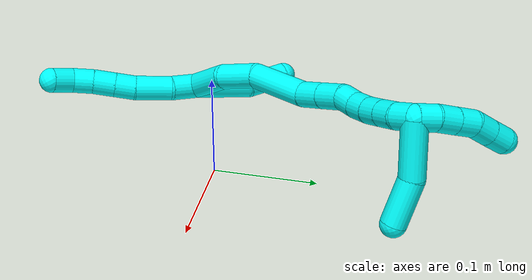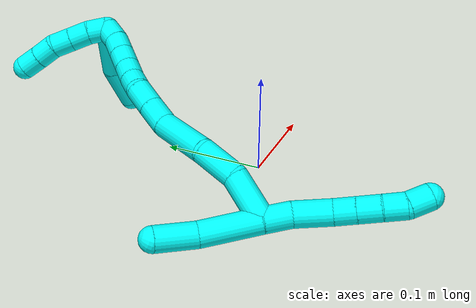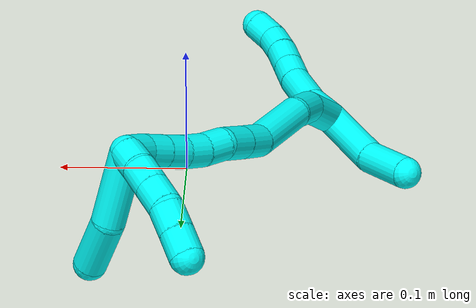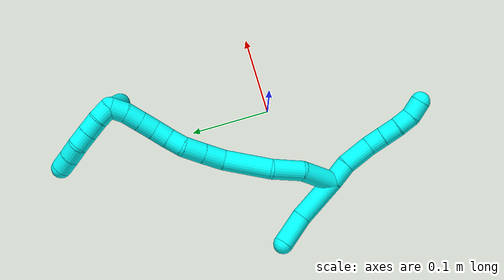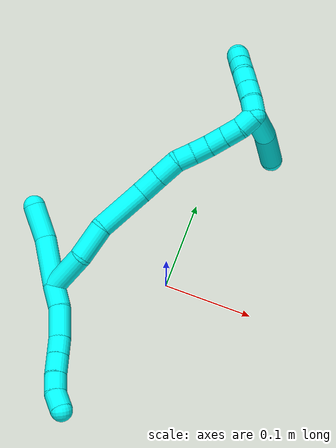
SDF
<sdf version="1.7">
 <world name="default">
  <model name="3">
   <static>0</static>
   <link name="3">
    <collision name="collision-cylinder-e_1_2_8">
     <pose>0.006473 -0.001153 -0.011763 3.04388 0.501022 2.76398</pose>
     <geometry><cylinder><radius>0.0125</radius><length>0.026952</length></cylinder></geometry>
     <surface>
      <friction><ode><mu>1.16</mu><mu2>1.16</mu2><slip1>0</slip1><slip2>0</slip2></ode></friction>
      <contact><ode><kp>1e+06</kp><kd>1</kd><max_vel>0</max_vel><min_depth>0.001</min_depth></ode></contact>
     </surface>
    </collision>
    <visual name="visual-cylinder-e_1_2_8">
     <pose>0.006473 -0.001153 -0.011763 3.04388 0.501022 2.76398</pose>
     <geometry><cylinder><radius>0.0125</radius><length>0.026952</length></cylinder></geometry>
     <material><ambient>0.003922 1 0.996078 1</ambient></material>
    </visual>
    <collision name="collision-cylinder-e_2_8_9">
     <pose>0.019931 -0.007713 -0.039763 2.82013 0.387541 1.76055</pose>
     <geometry><cylinder><radius>0.0125</radius><length>0.036967</length></cylinder></geometry>
     <surface>
      <friction><ode><mu>1.16</mu><mu2>1.16</mu2><slip1>0</slip1><slip2>0</slip2></ode></friction>
      <contact><ode><kp>1e+06</kp><kd>1</kd><max_vel>0</max_vel><min_depth>0.001</min_depth></ode></contact>
     </surface>
    </collision>
    <visual name="visual-cylinder-e_2_8_9">
     <pose>0.019931 -0.007713 -0.039763 2.82013 0.387541 1.76055</pose>
     <geometry><cylinder><radius>0.0125</radius><length>0.036967</length></cylinder></geometry>
     <material><ambient>0.003922 1 0.996078 1</ambient></material>
    </visual>
    <collision name="collision-cylinder-e_3_9_10">
     <pose>0.031296 -0.017449 -0.064448 2.66813 0.432295 1.47679</pose>
     <geometry><cylinder><radius>0.0125</radius><length>0.02091</length></cylinder></geometry>
     <surface>
      <friction><ode><mu>1.16</mu><mu2>1.16</mu2><slip1>0</slip1><slip2>0</slip2></ode></friction>
      <contact><ode><kp>1e+06</kp><kd>1</kd><max_vel>0</max_vel><min_depth>0.001</min_depth></ode></contact>
     </surface>
    </collision>
    <visual name="visual-cylinder-e_3_9_10">
     <pose>0.031296 -0.017449 -0.064448 2.66813 0.432295 1.47679</pose>
     <geometry><cylinder><radius>0.0125</radius><length>0.02091</length></cylinder></geometry>
     <material><ambient>0.003922 1 0.996078 1</ambient></material>
    </visual>
    <collision name="collision-cylinder-e_4_10_11">
     <pose>0.040334 -0.026396 -0.081903 2.66773 0.431305 1.47357</pose>
     <geometry><cylinder><radius>0.0125</radius><length>0.022285</length></cylinder></geometry>
     <surface>
      <friction><ode><mu>1.16</mu><mu2>1.16</mu2><slip1>0</slip1><slip2>0</slip2></ode></friction>
      <contact><ode><kp>1e+06</kp><kd>1</kd><max_vel>0</max_vel><min_depth>0.001</min_depth></ode></contact>
     </surface>
    </collision>
    <visual name="visual-cylinder-e_4_10_11">
     <pose>0.040334 -0.026396 -0.081903 2.66773 0.431305 1.47357</pose>
     <geometry><cylinder><radius>0.0125</radius><length>0.022285</length></cylinder></geometry>
     <material><ambient>0.003922 1 0.996078 1</ambient></material>
    </visual>
    <collision name="collision-cylinder-e_5_11_12">
     <pose>0.049369 -0.034397 -0.099923 2.78258 0.42668 1.74707</pose>
     <geometry><cylinder><radius>0.0125</radius><length>0.02115</length></cylinder></geometry>
     <surface>
      <friction><ode><mu>1.16</mu><mu2>1.16</mu2><slip1>0</slip1><slip2>0</slip2></ode></friction>
      <contact><ode><kp>1e+06</kp><kd>1</kd><max_vel>0</max_vel><min_depth>0.001</min_depth></ode></contact>
     </surface>
    </collision>
    <visual name="visual-cylinder-e_5_11_12">
     <pose>0.049369 -0.034397 -0.099923 2.78258 0.42668 1.74707</pose>
     <geometry><cylinder><radius>0.0125</radius><length>0.02115</length></cylinder></geometry>
     <material><ambient>0.003922 1 0.996078 1</ambient></material>
    </visual>
    <collision name="collision-cylinder-e_6_12_6">
     <pose>0.060519 -0.038406 -0.117412 3.06784 0.672915 2.93141</pose>
     <geometry><cylinder><radius>0.0125</radius><length>0.021737</length></cylinder></geometry>
     <surface>
      <friction><ode><mu>1.16</mu><mu2>1.16</mu2><slip1>0</slip1><slip2>0</slip2></ode></friction>
      <contact><ode><kp>1e+06</kp><kd>1</kd><max_vel>0</max_vel><min_depth>0.001</min_depth></ode></contact>
     </surface>
    </collision>
    <visual name="visual-cylinder-e_6_12_6">
     <pose>0.060519 -0.038406 -0.117412 3.06784 0.672915 2.93141</pose>
     <geometry><cylinder><radius>0.0125</radius><length>0.021737</length></cylinder></geometry>
     <material><ambient>0.003922 1 0.996078 1</ambient></material>
    </visual>
    <collision name="collision-cylinder-e_1_2_13">
     <pose>-0.014965 0.004861 0.024768 -0.193796 -0.535159 0.053284</pose>
     <geometry><cylinder><radius>0.0125</radius><length>0.058687</length></cylinder></geometry>
     <surface>
      <friction><ode><mu>1.16</mu><mu2>1.16</mu2><slip1>0</slip1><slip2>0</slip2></ode></friction>
      <contact><ode><kp>1e+06</kp><kd>1</kd><max_vel>0</max_vel><min_depth>0.001</min_depth></ode></contact>
     </surface>
    </collision>
    <visual name="visual-cylinder-e_1_2_13">
     <pose>-0.014965 0.004861 0.024768 -0.193796 -0.535159 0.053284</pose>
     <geometry><cylinder><radius>0.0125</radius><length>0.058687</length></cylinder></geometry>
     <material><ambient>0.003922 1 0.996078 1</ambient></material>
    </visual>
    <collision name="collision-cylinder-e_2_13_5">
     <pose>-0.037411 0.008683 0.068763 0.05402 -0.370638 -0.010129</pose>
     <geometry><cylinder><radius>0.0125</radius><length>0.041313</length></cylinder></geometry>
     <surface>
      <friction><ode><mu>1.16</mu><mu2>1.16</mu2><slip1>0</slip1><slip2>0</slip2></ode></friction>
      <contact><ode><kp>1e+06</kp><kd>1</kd><max_vel>0</max_vel><min_depth>0.001</min_depth></ode></contact>
     </surface>
    </collision>
    <visual name="visual-cylinder-e_2_13_5">
     <pose>-0.037411 0.008683 0.068763 0.05402 -0.370638 -0.010129</pose>
     <geometry><cylinder><radius>0.0125</radius><length>0.041313</length></cylinder></geometry>
     <material><ambient>0.003922 1 0.996078 1</ambient></material>
    </visual>
    <collision name="collision-cylinder-e_1_2_14">
     <pose>0.014034 0.012109 0.014949 -0.68084 0.630251 -0.229918</pose>
     <geometry><cylinder><radius>0.0125</radius><length>0.047625</length></cylinder></geometry>
     <surface>
      <friction><ode><mu>1.16</mu><mu2>1.16</mu2><slip1>0</slip1><slip2>0</slip2></ode></friction>
      <contact><ode><kp>1e+06</kp><kd>1</kd><max_vel>0</max_vel><min_depth>0.001</min_depth></ode></contact>
     </surface>
    </collision>
    <visual name="visual-cylinder-e_1_2_14">
     <pose>0.014034 0.012109 0.014949 -0.68084 0.630251 -0.229918</pose>
     <geometry><cylinder><radius>0.0125</radius><length>0.047625</length></cylinder></geometry>
     <material><ambient>0.003922 1 0.996078 1</ambient></material>
    </visual>
    <collision name="collision-cylinder-e_2_14_15">
     <pose>0.033803 0.036406 0.044565 -0.693321 0.292141 -0.106192</pose>
     <geometry><cylinder><radius>0.0125</radius><length>0.03983</length></cylinder></geometry>
     <surface>
      <friction><ode><mu>1.16</mu><mu2>1.16</mu2><slip1>0</slip1><slip2>0</slip2></ode></friction>
      <contact><ode><kp>1e+06</kp><kd>1</kd><max_vel>0</max_vel><min_depth>0.001</min_depth></ode></contact>
     </surface>
    </collision>
    <visual name="visual-cylinder-e_2_14_15">
     <pose>0.033803 0.036406 0.044565 -0.693321 0.292141 -0.106192</pose>
     <geometry><cylinder><radius>0.0125</radius><length>0.03983</length></cylinder></geometry>
     <material><ambient>0.003922 1 0.996078 1</ambient></material>
    </visual>
    <collision name="collision-cylinder-e_3_15_16">
     <pose>0.044174 0.073234 0.074975 -1.00228 0.157215 -0.086244</pose>
     <geometry><cylinder><radius>0.0125</radius><length>0.059207</length></cylinder></geometry>
     <surface>
      <friction><ode><mu>1.16</mu><mu2>1.16</mu2><slip1>0</slip1><slip2>0</slip2></ode></friction>
      <contact><ode><kp>1e+06</kp><kd>1</kd><max_vel>0</max_vel><min_depth>0.001</min_depth></ode></contact>
     </surface>
    </collision>
    <visual name="visual-cylinder-e_3_15_16">
     <pose>0.044174 0.073234 0.074975 -1.00228 0.157215 -0.086244</pose>
     <geometry><cylinder><radius>0.0125</radius><length>0.059207</length></cylinder></geometry>
     <material><ambient>0.003922 1 0.996078 1</ambient></material>
    </visual>
    <collision name="collision-cylinder-e_4_16_17">
     <pose>0.054572 0.10708 0.098232 -0.886153 0.451522 -0.217126</pose>
     <geometry><cylinder><radius>0.0125</radius><length>0.026417</length></cylinder></geometry>
     <surface>
      <friction><ode><mu>1.16</mu><mu2>1.16</mu2><slip1>0</slip1><slip2>0</slip2></ode></friction>
      <contact><ode><kp>1e+06</kp><kd>1</kd><max_vel>0</max_vel><min_depth>0.001</min_depth></ode></contact>
     </surface>
    </collision>
    <visual name="visual-cylinder-e_4_16_17">
     <pose>0.054572 0.10708 0.098232 -0.886153 0.451522 -0.217126</pose>
     <geometry><cylinder><radius>0.0125</radius><length>0.026417</length></cylinder></geometry>
     <material><ambient>0.003922 1 0.996078 1</ambient></material>
    </visual>
    <collision name="collision-cylinder-e_5_17_18">
     <pose>0.066282 0.125446 0.113134 -0.892185 0.467945 -0.226988</pose>
     <geometry><cylinder><radius>0.0125</radius><length>0.026369</length></cylinder></geometry>
     <surface>
      <friction><ode><mu>1.16</mu><mu2>1.16</mu2><slip1>0</slip1><slip2>0</slip2></ode></friction>
      <contact><ode><kp>1e+06</kp><kd>1</kd><max_vel>0</max_vel><min_depth>0.001</min_depth></ode></contact>
     </surface>
    </collision>
    <visual name="visual-cylinder-e_5_17_18">
     <pose>0.066282 0.125446 0.113134 -0.892185 0.467945 -0.226988</pose>
     <geometry><cylinder><radius>0.0125</radius><length>0.026369</length></cylinder></geometry>
     <material><ambient>0.003922 1 0.996078 1</ambient></material>
    </visual>
    <collision name="collision-cylinder-e_6_18_19">
     <pose>0.07587 0.143586 0.12349 -1.25142 0.36742 -0.266915</pose>
     <geometry><cylinder><radius>0.0125</radius><length>0.020269</length></cylinder></geometry>
     <surface>
      <friction><ode><mu>1.16</mu><mu2>1.16</mu2><slip1>0</slip1><slip2>0</slip2></ode></friction>
      <contact><ode><kp>1e+06</kp><kd>1</kd><max_vel>0</max_vel><min_depth>0.001</min_depth></ode></contact>
     </surface>
    </collision>
    <visual name="visual-cylinder-e_6_18_19">
     <pose>0.07587 0.143586 0.12349 -1.25142 0.36742 -0.266915</pose>
     <geometry><cylinder><radius>0.0125</radius><length>0.020269</length></cylinder></geometry>
     <material><ambient>0.003922 1 0.996078 1</ambient></material>
    </visual>
    <collision name="collision-cylinder-e_7_19_20">
     <pose>0.08447 0.160702 0.129733 -1.18837 0.51471 -0.351964</pose>
     <geometry><cylinder><radius>0.0125</radius><length>0.020151</length></cylinder></geometry>
     <surface>
      <friction><ode><mu>1.16</mu><mu2>1.16</mu2><slip1>0</slip1><slip2>0</slip2></ode></friction>
      <contact><ode><kp>1e+06</kp><kd>1</kd><max_vel>0</max_vel><min_depth>0.001</min_depth></ode></contact>
     </surface>
    </collision>
    <visual name="visual-cylinder-e_7_19_20">
     <pose>0.08447 0.160702 0.129733 -1.18837 0.51471 -0.351964</pose>
     <geometry><cylinder><radius>0.0125</radius><length>0.020151</length></cylinder></geometry>
     <material><ambient>0.003922 1 0.996078 1</ambient></material>
    </visual>
    <collision name="collision-cylinder-e_8_20_21">
     <pose>0.094933 0.176265 0.136855 -1.09255 0.581922 -0.360191</pose>
     <geometry><cylinder><radius>0.0125</radius><length>0.020024</length></cylinder></geometry>
     <surface>
      <friction><ode><mu>1.16</mu><mu2>1.16</mu2><slip1>0</slip1><slip2>0</slip2></ode></friction>
      <contact><ode><kp>1e+06</kp><kd>1</kd><max_vel>0</max_vel><min_depth>0.001</min_depth></ode></contact>
     </surface>
    </collision>
    <visual name="visual-cylinder-e_8_20_21">
     <pose>0.094933 0.176265 0.136855 -1.09255 0.581922 -0.360191</pose>
     <geometry><cylinder><radius>0.0125</radius><length>0.020024</length></cylinder></geometry>
     <material><ambient>0.003922 1 0.996078 1</ambient></material>
    </visual>
    <collision name="collision-cylinder-e_9_21_22">
     <pose>0.106013 0.191054 0.144609 -1.08323 0.589744 -0.36147</pose>
     <geometry><cylinder><radius>0.0125</radius><length>0.020057</length></cylinder></geometry>
     <surface>
      <friction><ode><mu>1.16</mu><mu2>1.16</mu2><slip1>0</slip1><slip2>0</slip2></ode></friction>
      <contact><ode><kp>1e+06</kp><kd>1</kd><max_vel>0</max_vel><min_depth>0.001</min_depth></ode></contact>
     </surface>
    </collision>
    <visual name="visual-cylinder-e_9_21_22">
     <pose>0.106013 0.191054 0.144609 -1.08323 0.589744 -0.36147</pose>
     <geometry><cylinder><radius>0.0125</radius><length>0.020057</length></cylinder></geometry>
     <material><ambient>0.003922 1 0.996078 1</ambient></material>
    </visual>
    <collision name="collision-cylinder-e_10_22_1">
     <pose>0.11606 0.205403 0.154146 -0.892228 0.462079 -0.224075</pose>
     <geometry><cylinder><radius>0.0125</radius><length>0.020051</length></cylinder></geometry>
     <surface>
      <friction><ode><mu>1.16</mu><mu2>1.16</mu2><slip1>0</slip1><slip2>0</slip2></ode></friction>
      <contact><ode><kp>1e+06</kp><kd>1</kd><max_vel>0</max_vel><min_depth>0.001</min_depth></ode></contact>
     </surface>
    </collision>
    <visual name="visual-cylinder-e_10_22_1">
     <pose>0.11606 0.205403 0.154146 -0.892228 0.462079 -0.224075</pose>
     <geometry><cylinder><radius>0.0125</radius><length>0.020051</length></cylinder></geometry>
     <material><ambient>0.003922 1 0.996078 1</ambient></material>
    </visual>
    <collision name="collision-cylinder-e_1_1_23">
     <pose>0.115566 0.214471 0.168207 -0.242154 -0.519337 0.064626</pose>
     <geometry><cylinder><radius>0.0125</radius><length>0.02</length></cylinder></geometry>
     <surface>
      <friction><ode><mu>1.16</mu><mu2>1.16</mu2><slip1>0</slip1><slip2>0</slip2></ode></friction>
      <contact><ode><kp>1e+06</kp><kd>1</kd><max_vel>0</max_vel><min_depth>0.001</min_depth></ode></contact>
     </surface>
    </collision>
    <visual name="visual-cylinder-e_1_1_23">
     <pose>0.115566 0.214471 0.168207 -0.242154 -0.519337 0.064626</pose>
     <geometry><cylinder><radius>0.0125</radius><length>0.02</length></cylinder></geometry>
     <material><ambient>0.003922 1 0.996078 1</ambient></material>
    </visual>
    <collision name="collision-cylinder-e_2_23_24">
     <pose>0.104252 0.218703 0.184054 -0.28205 -0.688184 0.10166</pose>
     <geometry><cylinder><radius>0.0125</radius><length>0.02</length></cylinder></geometry>
     <surface>
      <friction><ode><mu>1.16</mu><mu2>1.16</mu2><slip1>0</slip1><slip2>0</slip2></ode></friction>
      <contact><ode><kp>1e+06</kp><kd>1</kd><max_vel>0</max_vel><min_depth>0.001</min_depth></ode></contact>
     </surface>
    </collision>
    <visual name="visual-cylinder-e_2_23_24">
     <pose>0.104252 0.218703 0.184054 -0.28205 -0.688184 0.10166</pose>
     <geometry><cylinder><radius>0.0125</radius><length>0.02</length></cylinder></geometry>
     <material><ambient>0.003922 1 0.996078 1</ambient></material>
    </visual>
    <collision name="collision-cylinder-e_3_24_25">
     <pose>0.091567 0.222977 0.198914 -0.278099 -0.685911 0.099862</pose>
     <geometry><cylinder><radius>0.0125</radius><length>0.02</length></cylinder></geometry>
     <surface>
      <friction><ode><mu>1.16</mu><mu2>1.16</mu2><slip1>0</slip1><slip2>0</slip2></ode></friction>
      <contact><ode><kp>1e+06</kp><kd>1</kd><max_vel>0</max_vel><min_depth>0.001</min_depth></ode></contact>
     </surface>
    </collision>
    <visual name="visual-cylinder-e_3_24_25">
     <pose>0.091567 0.222977 0.198914 -0.278099 -0.685911 0.099862</pose>
     <geometry><cylinder><radius>0.0125</radius><length>0.02</length></cylinder></geometry>
     <material><ambient>0.003922 1 0.996078 1</ambient></material>
    </visual>
    <collision name="collision-cylinder-e_4_25_26">
     <pose>0.077349 0.228402 0.211545 -0.566462 -0.908294 0.282286</pose>
     <geometry><cylinder><radius>0.0125</radius><length>0.02</length></cylinder></geometry>
     <surface>
      <friction><ode><mu>1.16</mu><mu2>1.16</mu2><slip1>0</slip1><slip2>0</slip2></ode></friction>
      <contact><ode><kp>1e+06</kp><kd>1</kd><max_vel>0</max_vel><min_depth>0.001</min_depth></ode></contact>
     </surface>
    </collision>
    <visual name="visual-cylinder-e_4_25_26">
     <pose>0.077349 0.228402 0.211545 -0.566462 -0.908294 0.282286</pose>
     <geometry><cylinder><radius>0.0125</radius><length>0.02</length></cylinder></geometry>
     <material><ambient>0.003922 1 0.996078 1</ambient></material>
    </visual>
    <collision name="collision-cylinder-e_5_26_4">
     <pose>0.061756 0.235147 0.222095 -0.57119 -0.88014 0.274771</pose>
     <geometry><cylinder><radius>0.0125</radius><length>0.02</length></cylinder></geometry>
     <surface>
      <friction><ode><mu>1.16</mu><mu2>1.16</mu2><slip1>0</slip1><slip2>0</slip2></ode></friction>
      <contact><ode><kp>1e+06</kp><kd>1</kd><max_vel>0</max_vel><min_depth>0.001</min_depth></ode></contact>
     </surface>
    </collision>
    <visual name="visual-cylinder-e_5_26_4">
     <pose>0.061756 0.235147 0.222095 -0.57119 -0.88014 0.274771</pose>
     <geometry><cylinder><radius>0.0125</radius><length>0.02</length></cylinder></geometry>
     <material><ambient>0.003922 1 0.996078 1</ambient></material>
    </visual>
    <collision name="collision-cylinder-e_1_1_27">
     <pose>0.101258 0.228389 0.147784 -2.21409 -0.766952 1.35761</pose>
     <geometry><cylinder><radius>0.0125</radius><length>0.055543</length></cylinder></geometry>
     <surface>
      <friction><ode><mu>1.16</mu><mu2>1.16</mu2><slip1>0</slip1><slip2>0</slip2></ode></friction>
      <contact><ode><kp>1e+06</kp><kd>1</kd><max_vel>0</max_vel><min_depth>0.001</min_depth></ode></contact>
     </surface>
    </collision>
    <visual name="visual-cylinder-e_1_1_27">
     <pose>0.101258 0.228389 0.147784 -2.21409 -0.766952 1.35761</pose>
     <geometry><cylinder><radius>0.0125</radius><length>0.055543</length></cylinder></geometry>
     <material><ambient>0.003922 1 0.996078 1</ambient></material>
    </visual>
    <collision name="collision-cylinder-e_2_27_3">
     <pose>0.069392 0.253914 0.120145 -2.59468 -0.602303 1.67261</pose>
     <geometry><cylinder><radius>0.0125</radius><length>0.044457</length></cylinder></geometry>
     <surface>
      <friction><ode><mu>1.16</mu><mu2>1.16</mu2><slip1>0</slip1><slip2>0</slip2></ode></friction>
      <contact><ode><kp>1e+06</kp><kd>1</kd><max_vel>0</max_vel><min_depth>0.001</min_depth></ode></contact>
     </surface>
    </collision>
    <visual name="visual-cylinder-e_2_27_3">
     <pose>0.069392 0.253914 0.120145 -2.59468 -0.602303 1.67261</pose>
     <geometry><cylinder><radius>0.0125</radius><length>0.044457</length></cylinder></geometry>
     <material><ambient>0.003922 1 0.996078 1</ambient></material>
    </visual>
    <collision name="collision-sphere-3">
     <pose>0.056799 0.26344 0.1045 0 -0 0</pose>
     <geometry><sphere><radius>0.0125</radius></sphere></geometry>
     <surface>
      <friction><ode><mu>1.16</mu><mu2>1.16</mu2><slip1>0</slip1><slip2>0</slip2></ode></friction>
      <contact><ode><kp>1e+06</kp><kd>1</kd><max_vel>0</max_vel><min_depth>0.001</min_depth></ode></contact>
     </surface>
    </collision>
    <visual name="visual-sphere-3">
     <pose>0.056799 0.26344 0.1045 0 -0 0</pose>
     <geometry><sphere><radius>0.0125</radius></sphere></geometry>
     <material><ambient>0.003922 1 0.996078 1</ambient></material>
    </visual>
    <collision name="collision-sphere-27">
     <pose>0.081986 0.244388 0.13579 0 -0 0</pose>
     <geometry><sphere><radius>0.0125</radius></sphere></geometry>
     <surface>
      <friction><ode><mu>1.16</mu><mu2>1.16</mu2><slip1>0</slip1><slip2>0</slip2></ode></friction>
      <contact><ode><kp>1e+06</kp><kd>1</kd><max_vel>0</max_vel><min_depth>0.001</min_depth></ode></contact>
     </surface>
    </collision>
    <visual name="visual-sphere-27">
     <pose>0.081986 0.244388 0.13579 0 -0 0</pose>
     <geometry><sphere><radius>0.0125</radius></sphere></geometry>
     <material><ambient>0.003922 1 0.996078 1</ambient></material>
    </visual>
    <collision name="collision-sphere-4">
     <pose>0.054047 0.238591 0.227454 0 -0 0</pose>
     <geometry><sphere><radius>0.0125</radius></sphere></geometry>
     <surface>
      <friction><ode><mu>1.16</mu><mu2>1.16</mu2><slip1>0</slip1><slip2>0</slip2></ode></friction>
      <contact><ode><kp>1e+06</kp><kd>1</kd><max_vel>0</max_vel><min_depth>0.001</min_depth></ode></contact>
     </surface>
    </collision>
    <visual name="visual-sphere-4">
     <pose>0.054047 0.238591 0.227454 0 -0 0</pose>
     <geometry><sphere><radius>0.0125</radius></sphere></geometry>
     <material><ambient>0.003922 1 0.996078 1</ambient></material>
    </visual>
    <collision name="collision-sphere-26">
     <pose>0.069464 0.231703 0.216736 0 -0 0</pose>
     <geometry><sphere><radius>0.0125</radius></sphere></geometry>
     <surface>
      <friction><ode><mu>1.16</mu><mu2>1.16</mu2><slip1>0</slip1><slip2>0</slip2></ode></friction>
      <contact><ode><kp>1e+06</kp><kd>1</kd><max_vel>0</max_vel><min_depth>0.001</min_depth></ode></contact>
     </surface>
    </collision>
    <visual name="visual-sphere-26">
     <pose>0.069464 0.231703 0.216736 0 -0 0</pose>
     <geometry><sphere><radius>0.0125</radius></sphere></geometry>
     <material><ambient>0.003922 1 0.996078 1</ambient></material>
    </visual>
    <collision name="collision-sphere-25">
     <pose>0.085233 0.225101 0.206355 0 -0 0</pose>
     <geometry><sphere><radius>0.0125</radius></sphere></geometry>
     <surface>
      <friction><ode><mu>1.16</mu><mu2>1.16</mu2><slip1>0</slip1><slip2>0</slip2></ode></friction>
      <contact><ode><kp>1e+06</kp><kd>1</kd><max_vel>0</max_vel><min_depth>0.001</min_depth></ode></contact>
     </surface>
    </collision>
    <visual name="visual-sphere-25">
     <pose>0.085233 0.225101 0.206355 0 -0 0</pose>
     <geometry><sphere><radius>0.0125</radius></sphere></geometry>
     <material><ambient>0.003922 1 0.996078 1</ambient></material>
    </visual>
    <collision name="collision-sphere-24">
     <pose>0.097901 0.220852 0.191473 0 -0 0</pose>
     <geometry><sphere><radius>0.0125</radius></sphere></geometry>
     <surface>
      <friction><ode><mu>1.16</mu><mu2>1.16</mu2><slip1>0</slip1><slip2>0</slip2></ode></friction>
      <contact><ode><kp>1e+06</kp><kd>1</kd><max_vel>0</max_vel><min_depth>0.001</min_depth></ode></contact>
     </surface>
    </collision>
    <visual name="visual-sphere-24">
     <pose>0.097901 0.220852 0.191473 0 -0 0</pose>
     <geometry><sphere><radius>0.0125</radius></sphere></geometry>
     <material><ambient>0.003922 1 0.996078 1</ambient></material>
    </visual>
    <collision name="collision-sphere-23">
     <pose>0.110603 0.216553 0.176635 0 -0 0</pose>
     <geometry><sphere><radius>0.0125</radius></sphere></geometry>
     <surface>
      <friction><ode><mu>1.16</mu><mu2>1.16</mu2><slip1>0</slip1><slip2>0</slip2></ode></friction>
      <contact><ode><kp>1e+06</kp><kd>1</kd><max_vel>0</max_vel><min_depth>0.001</min_depth></ode></contact>
     </surface>
    </collision>
    <visual name="visual-sphere-23">
     <pose>0.110603 0.216553 0.176635 0 -0 0</pose>
     <geometry><sphere><radius>0.0125</radius></sphere></geometry>
     <material><ambient>0.003922 1 0.996078 1</ambient></material>
    </visual>
    <collision name="collision-sphere-1">
     <pose>0.120529 0.212389 0.159779 0 -0 0</pose>
     <geometry><sphere><radius>0.0125</radius></sphere></geometry>
     <surface>
      <friction><ode><mu>1.16</mu><mu2>1.16</mu2><slip1>0</slip1><slip2>0</slip2></ode></friction>
      <contact><ode><kp>1e+06</kp><kd>1</kd><max_vel>0</max_vel><min_depth>0.001</min_depth></ode></contact>
     </surface>
    </collision>
    <visual name="visual-sphere-1">
     <pose>0.120529 0.212389 0.159779 0 -0 0</pose>
     <geometry><sphere><radius>0.0125</radius></sphere></geometry>
     <material><ambient>0.003922 1 0.996078 1</ambient></material>
    </visual>
    <collision name="collision-sphere-22">
     <pose>0.111591 0.198417 0.148513 0 -0 0</pose>
     <geometry><sphere><radius>0.0125</radius></sphere></geometry>
     <surface>
      <friction><ode><mu>1.16</mu><mu2>1.16</mu2><slip1>0</slip1><slip2>0</slip2></ode></friction>
      <contact><ode><kp>1e+06</kp><kd>1</kd><max_vel>0</max_vel><min_depth>0.001</min_depth></ode></contact>
     </surface>
    </collision>
    <visual name="visual-sphere-22">
     <pose>0.111591 0.198417 0.148513 0 -0 0</pose>
     <geometry><sphere><radius>0.0125</radius></sphere></geometry>
     <material><ambient>0.003922 1 0.996078 1</ambient></material>
    </visual>
    <collision name="collision-sphere-21">
     <pose>0.100436 0.18369 0.140704 0 -0 0</pose>
     <geometry><sphere><radius>0.0125</radius></sphere></geometry>
     <surface>
      <friction><ode><mu>1.16</mu><mu2>1.16</mu2><slip1>0</slip1><slip2>0</slip2></ode></friction>
      <contact><ode><kp>1e+06</kp><kd>1</kd><max_vel>0</max_vel><min_depth>0.001</min_depth></ode></contact>
     </surface>
    </collision>
    <visual name="visual-sphere-21">
     <pose>0.100436 0.18369 0.140704 0 -0 0</pose>
     <geometry><sphere><radius>0.0125</radius></sphere></geometry>
     <material><ambient>0.003922 1 0.996078 1</ambient></material>
    </visual>
    <collision name="collision-sphere-12">
     <pose>0.053745 -0.03778 -0.108936 0 -0 0</pose>
     <geometry><sphere><radius>0.0125</radius></sphere></geometry>
     <surface>
      <friction><ode><mu>1.16</mu><mu2>1.16</mu2><slip1>0</slip1><slip2>0</slip2></ode></friction>
      <contact><ode><kp>1e+06</kp><kd>1</kd><max_vel>0</max_vel><min_depth>0.001</min_depth></ode></contact>
     </surface>
    </collision>
    <visual name="visual-sphere-12">
     <pose>0.053745 -0.03778 -0.108936 0 -0 0</pose>
     <geometry><sphere><radius>0.0125</radius></sphere></geometry>
     <material><ambient>0.003922 1 0.996078 1</ambient></material>
    </visual>
    <collision name="collision-sphere-11">
     <pose>0.044993 -0.031015 -0.09091 0 -0 0</pose>
     <geometry><sphere><radius>0.0125</radius></sphere></geometry>
     <surface>
      <friction><ode><mu>1.16</mu><mu2>1.16</mu2><slip1>0</slip1><slip2>0</slip2></ode></friction>
      <contact><ode><kp>1e+06</kp><kd>1</kd><max_vel>0</max_vel><min_depth>0.001</min_depth></ode></contact>
     </surface>
    </collision>
    <visual name="visual-sphere-11">
     <pose>0.044993 -0.031015 -0.09091 0 -0 0</pose>
     <geometry><sphere><radius>0.0125</radius></sphere></geometry>
     <material><ambient>0.003922 1 0.996078 1</ambient></material>
    </visual>
    <collision name="collision-sphere-10">
     <pose>0.035676 -0.021777 -0.072897 0 -0 0</pose>
     <geometry><sphere><radius>0.0125</radius></sphere></geometry>
     <surface>
      <friction><ode><mu>1.16</mu><mu2>1.16</mu2><slip1>0</slip1><slip2>0</slip2></ode></friction>
      <contact><ode><kp>1e+06</kp><kd>1</kd><max_vel>0</max_vel><min_depth>0.001</min_depth></ode></contact>
     </surface>
    </collision>
    <visual name="visual-sphere-10">
     <pose>0.035676 -0.021777 -0.072897 0 -0 0</pose>
     <geometry><sphere><radius>0.0125</radius></sphere></geometry>
     <material><ambient>0.003922 1 0.996078 1</ambient></material>
    </visual>
    <collision name="collision-sphere-9">
     <pose>0.026916 -0.01312 -0.055999 0 -0 0</pose>
     <geometry><sphere><radius>0.0125</radius></sphere></geometry>
     <surface>
      <friction><ode><mu>1.16</mu><mu2>1.16</mu2><slip1>0</slip1><slip2>0</slip2></ode></friction>
      <contact><ode><kp>1e+06</kp><kd>1</kd><max_vel>0</max_vel><min_depth>0.001</min_depth></ode></contact>
     </surface>
    </collision>
    <visual name="visual-sphere-9">
     <pose>0.026916 -0.01312 -0.055999 0 -0 0</pose>
     <geometry><sphere><radius>0.0125</radius></sphere></geometry>
     <material><ambient>0.003922 1 0.996078 1</ambient></material>
    </visual>
    <collision name="collision-sphere-2">
     <geometry><sphere><radius>0.0125</radius></sphere></geometry>
     <surface>
      <friction><ode><mu>1.16</mu><mu2>1.16</mu2><slip1>0</slip1><slip2>0</slip2></ode></friction>
      <contact><ode><kp>1e+06</kp><kd>1</kd><max_vel>0</max_vel><min_depth>0.001</min_depth></ode></contact>
     </surface>
    </collision>
    <visual name="visual-sphere-2">
     <geometry><sphere><radius>0.0125</radius></sphere></geometry>
     <material><ambient>0.003922 1 0.996078 1</ambient></material>
    </visual>
    <collision name="collision-sphere-19">
     <pose>0.07951 0.152566 0.12646 0 -0 0</pose>
     <geometry><sphere><radius>0.0125</radius></sphere></geometry>
     <surface>
      <friction><ode><mu>1.16</mu><mu2>1.16</mu2><slip1>0</slip1><slip2>0</slip2></ode></friction>
      <contact><ode><kp>1e+06</kp><kd>1</kd><max_vel>0</max_vel><min_depth>0.001</min_depth></ode></contact>
     </surface>
    </collision>
    <visual name="visual-sphere-19">
     <pose>0.07951 0.152566 0.12646 0 -0 0</pose>
     <geometry><sphere><radius>0.0125</radius></sphere></geometry>
     <material><ambient>0.003922 1 0.996078 1</ambient></material>
    </visual>
    <collision name="collision-sphere-8">
     <pose>0.012945 -0.002306 -0.023526 0 -0 0</pose>
     <geometry><sphere><radius>0.0125</radius></sphere></geometry>
     <surface>
      <friction><ode><mu>1.16</mu><mu2>1.16</mu2><slip1>0</slip1><slip2>0</slip2></ode></friction>
      <contact><ode><kp>1e+06</kp><kd>1</kd><max_vel>0</max_vel><min_depth>0.001</min_depth></ode></contact>
     </surface>
    </collision>
    <visual name="visual-sphere-8">
     <pose>0.012945 -0.002306 -0.023526 0 -0 0</pose>
     <geometry><sphere><radius>0.0125</radius></sphere></geometry>
     <material><ambient>0.003922 1 0.996078 1</ambient></material>
    </visual>
    <collision name="collision-sphere-6">
     <pose>0.067293 -0.039032 -0.125888 0 -0 0</pose>
     <geometry><sphere><radius>0.0125</radius></sphere></geometry>
     <surface>
      <friction><ode><mu>1.16</mu><mu2>1.16</mu2><slip1>0</slip1><slip2>0</slip2></ode></friction>
      <contact><ode><kp>1e+06</kp><kd>1</kd><max_vel>0</max_vel><min_depth>0.001</min_depth></ode></contact>
     </surface>
    </collision>
    <visual name="visual-sphere-6">
     <pose>0.067293 -0.039032 -0.125888 0 -0 0</pose>
     <geometry><sphere><radius>0.0125</radius></sphere></geometry>
     <material><ambient>0.003922 1 0.996078 1</ambient></material>
    </visual>
    <collision name="collision-sphere-13">
     <pose>-0.029929 0.009722 0.049537 0 -0 0</pose>
     <geometry><sphere><radius>0.0125</radius></sphere></geometry>
     <surface>
      <friction><ode><mu>1.16</mu><mu2>1.16</mu2><slip1>0</slip1><slip2>0</slip2></ode></friction>
      <contact><ode><kp>1e+06</kp><kd>1</kd><max_vel>0</max_vel><min_depth>0.001</min_depth></ode></contact>
     </surface>
    </collision>
    <visual name="visual-sphere-13">
     <pose>-0.029929 0.009722 0.049537 0 -0 0</pose>
     <geometry><sphere><radius>0.0125</radius></sphere></geometry>
     <material><ambient>0.003922 1 0.996078 1</ambient></material>
    </visual>
    <collision name="collision-sphere-5">
     <pose>-0.044893 0.007643 0.087988 0 -0 0</pose>
     <geometry><sphere><radius>0.0125</radius></sphere></geometry>
     <surface>
      <friction><ode><mu>1.16</mu><mu2>1.16</mu2><slip1>0</slip1><slip2>0</slip2></ode></friction>
      <contact><ode><kp>1e+06</kp><kd>1</kd><max_vel>0</max_vel><min_depth>0.001</min_depth></ode></contact>
     </surface>
    </collision>
    <visual name="visual-sphere-5">
     <pose>-0.044893 0.007643 0.087988 0 -0 0</pose>
     <geometry><sphere><radius>0.0125</radius></sphere></geometry>
     <material><ambient>0.003922 1 0.996078 1</ambient></material>
    </visual>
    <collision name="collision-sphere-14">
     <pose>0.028068 0.024218 0.029897 0 -0 0</pose>
     <geometry><sphere><radius>0.0125</radius></sphere></geometry>
     <surface>
      <friction><ode><mu>1.16</mu><mu2>1.16</mu2><slip1>0</slip1><slip2>0</slip2></ode></friction>
      <contact><ode><kp>1e+06</kp><kd>1</kd><max_vel>0</max_vel><min_depth>0.001</min_depth></ode></contact>
     </surface>
    </collision>
    <visual name="visual-sphere-14">
     <pose>0.028068 0.024218 0.029897 0 -0 0</pose>
     <geometry><sphere><radius>0.0125</radius></sphere></geometry>
     <material><ambient>0.003922 1 0.996078 1</ambient></material>
    </visual>
    <collision name="collision-sphere-15">
     <pose>0.039539 0.048595 0.059233 0 -0 0</pose>
     <geometry><sphere><radius>0.0125</radius></sphere></geometry>
     <surface>
      <friction><ode><mu>1.16</mu><mu2>1.16</mu2><slip1>0</slip1><slip2>0</slip2></ode></friction>
      <contact><ode><kp>1e+06</kp><kd>1</kd><max_vel>0</max_vel><min_depth>0.001</min_depth></ode></contact>
     </surface>
    </collision>
    <visual name="visual-sphere-15">
     <pose>0.039539 0.048595 0.059233 0 -0 0</pose>
     <geometry><sphere><radius>0.0125</radius></sphere></geometry>
     <material><ambient>0.003922 1 0.996078 1</ambient></material>
    </visual>
    <collision name="collision-sphere-16">
     <pose>0.048809 0.097873 0.090716 0 -0 0</pose>
     <geometry><sphere><radius>0.0125</radius></sphere></geometry>
     <surface>
      <friction><ode><mu>1.16</mu><mu2>1.16</mu2><slip1>0</slip1><slip2>0</slip2></ode></friction>
      <contact><ode><kp>1e+06</kp><kd>1</kd><max_vel>0</max_vel><min_depth>0.001</min_depth></ode></contact>
     </surface>
    </collision>
    <visual name="visual-sphere-16">
     <pose>0.048809 0.097873 0.090716 0 -0 0</pose>
     <geometry><sphere><radius>0.0125</radius></sphere></geometry>
     <material><ambient>0.003922 1 0.996078 1</ambient></material>
    </visual>
    <collision name="collision-sphere-17">
     <pose>0.060335 0.116286 0.105748 0 -0 0</pose>
     <geometry><sphere><radius>0.0125</radius></sphere></geometry>
     <surface>
      <friction><ode><mu>1.16</mu><mu2>1.16</mu2><slip1>0</slip1><slip2>0</slip2></ode></friction>
      <contact><ode><kp>1e+06</kp><kd>1</kd><max_vel>0</max_vel><min_depth>0.001</min_depth></ode></contact>
     </surface>
    </collision>
    <visual name="visual-sphere-17">
     <pose>0.060335 0.116286 0.105748 0 -0 0</pose>
     <geometry><sphere><radius>0.0125</radius></sphere></geometry>
     <material><ambient>0.003922 1 0.996078 1</ambient></material>
    </visual>
    <collision name="collision-sphere-18">
     <pose>0.072229 0.134606 0.120521 0 -0 0</pose>
     <geometry><sphere><radius>0.0125</radius></sphere></geometry>
     <surface>
      <friction><ode><mu>1.16</mu><mu2>1.16</mu2><slip1>0</slip1><slip2>0</slip2></ode></friction>
      <contact><ode><kp>1e+06</kp><kd>1</kd><max_vel>0</max_vel><min_depth>0.001</min_depth></ode></contact>
     </surface>
    </collision>
    <visual name="visual-sphere-18">
     <pose>0.072229 0.134606 0.120521 0 -0 0</pose>
     <geometry><sphere><radius>0.0125</radius></sphere></geometry>
     <material><ambient>0.003922 1 0.996078 1</ambient></material>
    </visual>
    <collision name="collision-sphere-20">
     <pose>0.08943 0.168839 0.133005 0 -0 0</pose>
     <geometry><sphere><radius>0.0125</radius></sphere></geometry>
     <surface>
      <friction><ode><mu>1.16</mu><mu2>1.16</mu2><slip1>0</slip1><slip2>0</slip2></ode></friction>
      <contact><ode><kp>1e+06</kp><kd>1</kd><max_vel>0</max_vel><min_depth>0.001</min_depth></ode></contact>
     </surface>
    </collision>
    <visual name="visual-sphere-20">
     <pose>0.08943 0.168839 0.133005 0 -0 0</pose>
     <geometry><sphere><radius>0.0125</radius></sphere></geometry>
     <material><ambient>0.003922 1 0.996078 1</ambient></material>
    </visual>
    <inertial>
     <pose>0.050044 0.099077 0.072358 0 -0 0</pose>
     <mass>0.75</mass>
     <inertia>
      <ixx>9.6e-05</ixx>
      <ixy>0</ixy>
      <ixz>0</ixz>
      <iyy>0.000127</iyy>
      <iyz>0</iyz>
      <izz>-2.9e-05</izz>
     </inertia>
    </inertial>
   </link>
   <pose>-0.114373 -0.049699 0.022584 -0.785087 -1.01431 -0.206707</pose>
  </model>
 </world>
</sdf>
